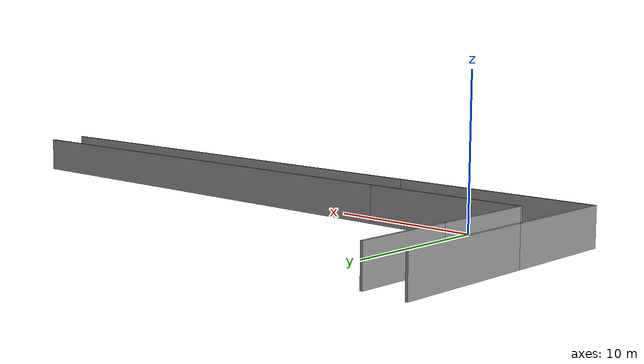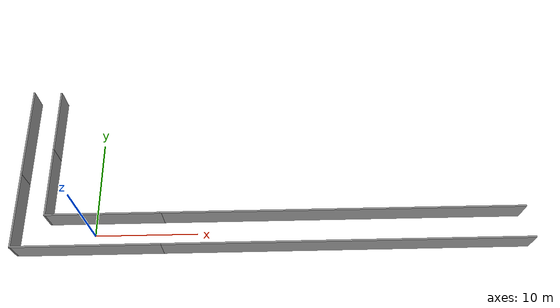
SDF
<?xml version='1.0'?>
<sdf version='1.7'>
  <model name='world2'>
    <pose>17.385 6.66538 0 0 -0 0</pose>
    <link name='Wall_12'>
      <collision name='Wall_12_Collision'>
        <geometry>
          <box>
            <size>7.75 0.15 2.5</size>
          </box>
        </geometry>
        <pose>0 0 1.25 0 -0 0</pose>
      </collision>
      <visual name='Wall_12_Visual'>
        <pose>0 0 1.25 0 -0 0</pose>
        <geometry>
          <box>
            <size>7.75 0.15 2.5</size>
          </box>
        </geometry>
        <material>
          <script>
            <uri>file://media/materials/scripts/gazebo.material</uri>
            <name>Gazebo/Grey</name>
          </script>
          <ambient>1 1 1 1</ambient>
        </material>
        <meta>
          <layer>0</layer>
        </meta>
      </visual>
      <pose>-24.6986 -4.675 0 0 -0 1.5708</pose>
    </link>
    <link name='Wall_14'>
      <collision name='Wall_14_Collision'>
        <geometry>
          <box>
            <size>11.25 0.15 2.5</size>
          </box>
        </geometry>
        <pose>0 0 1.25 0 -0 0</pose>
      </collision>
      <visual name='Wall_14_Visual'>
        <pose>0 0 1.25 0 -0 0</pose>
        <geometry>
          <box>
            <size>11.25 0.15 2.5</size>
          </box>
        </geometry>
        <material>
          <script>
            <uri>file://media/materials/scripts/gazebo.material</uri>
            <name>Gazebo/Grey</name>
          </script>
          <ambient>1 1 1 1</ambient>
        </material>
        <meta>
          <layer>0</layer>
        </meta>
      </visual>
      <pose>-16.3037 -5.29947 0 0 -0 3.14159</pose>
    </link>
    <link name='Wall_16'>
      <collision name='Wall_16_Collision'>
        <geometry>
          <box>
            <size>7.25 0.15 2.5</size>
          </box>
        </geometry>
        <pose>0 0 1.25 0 -0 0</pose>
      </collision>
      <visual name='Wall_16_Visual'>
        <pose>0 0 1.25 0 -0 0</pose>
        <geometry>
          <box>
            <size>7.25 0.15 2.5</size>
          </box>
        </geometry>
        <material>
          <script>
            <uri>file://media/materials/scripts/gazebo.material</uri>
            <name>Gazebo/Grey</name>
          </script>
          <ambient>1 1 1 1</ambient>
        </material>
        <meta>
          <layer>0</layer>
        </meta>
      </visual>
      <pose>-21.8537 -1.74947 0 0 -0 1.5708</pose>
    </link>
    <link name='Wall_18'>
      <collision name='Wall_18_Collision'>
        <geometry>
          <box>
            <size>9.5 0.15 2.5</size>
          </box>
        </geometry>
        <pose>0 0 1.25 0 -0 0</pose>
      </collision>
      <visual name='Wall_18_Visual'>
        <pose>0 0 1.25 0 -0 0</pose>
        <geometry>
          <box>
            <size>9.5 0.15 2.5</size>
          </box>
        </geometry>
        <material>
          <script>
            <uri>file://media/materials/scripts/gazebo.material</uri>
            <name>Gazebo/Grey</name>
          </script>
          <ambient>1 1 1 1</ambient>
        </material>
        <meta>
          <layer>0</layer>
        </meta>
      </visual>
      <pose>-24.6986 3.8 0 0 -0 1.5708</pose>
    </link>
    <link name='Wall_20'>
      <collision name='Wall_20_Collision'>
        <geometry>
          <box>
            <size>6.75 0.15 2.5</size>
          </box>
        </geometry>
        <pose>0 0 1.25 0 -0 0</pose>
      </collision>
      <visual name='Wall_20_Visual'>
        <pose>0 0 1.25 0 -0 0</pose>
        <geometry>
          <box>
            <size>6.75 0.15 2.5</size>
          </box>
        </geometry>
        <material>
          <script>
            <uri>file://media/materials/scripts/gazebo.material</uri>
            <name>Gazebo/Grey</name>
          </script>
          <ambient>1 1 1 1</ambient>
        </material>
        <meta>
          <layer>0</layer>
        </meta>
      </visual>
      <pose>-21.8537 5.10053 0 0 -0 1.5708</pose>
    </link>
    <link name='Wall_24'>
      <collision name='Wall_24_Collision'>
        <geometry>
          <box>
            <size>35.5 0.15 2.5</size>
          </box>
        </geometry>
        <pose>0 0 1.25 0 -0 0</pose>
      </collision>
      <visual name='Wall_24_Visual'>
        <pose>0 0 1.25 0 -0 0</pose>
        <geometry>
          <box>
            <size>35.5 0.15 2.5</size>
          </box>
        </geometry>
        <material>
          <script>
            <uri>file://media/materials/scripts/gazebo.material</uri>
            <name>Gazebo/Grey</name>
          </script>
          <ambient>1 1 1 1</ambient>
        </material>
        <meta>
          <layer>0</layer>
        </meta>
      </visual>
      <pose>7.02355 -8.475 0 0 -0 0</pose>
    </link>
    <link name='Wall_27'>
      <collision name='Wall_27_Collision'>
        <geometry>
          <box>
            <size>35.25 0.15 2.5</size>
          </box>
        </geometry>
        <pose>0 0 1.25 0 -0 0</pose>
      </collision>
      <visual name='Wall_27_Visual'>
        <pose>0 0 1.25 0 -0 0</pose>
        <geometry>
          <box>
            <size>35.25 0.15 2.5</size>
          </box>
        </geometry>
        <material>
          <script>
            <uri>file://media/materials/scripts/gazebo.material</uri>
            <name>Gazebo/Grey</name>
          </script>
          <ambient>1 1 1 1</ambient>
        </material>
        <meta>
          <layer>0</layer>
        </meta>
      </visual>
      <pose>6.79625 -5.29947 0 0 -0 0</pose>
    </link>
    <link name='Wall_9'>
      <collision name='Wall_9_Collision'>
        <geometry>
          <box>
            <size>14.1971 0.15 2.5</size>
          </box>
        </geometry>
        <pose>0 0 1.25 0 -0 0</pose>
      </collision>
      <visual name='Wall_9_Visual'>
        <pose>0 0 1.25 0 -0 0</pose>
        <geometry>
          <box>
            <size>14.1971 0.15 2.5</size>
          </box>
        </geometry>
        <material>
          <script>
            <uri>file://media/materials/scripts/gazebo.material</uri>
            <name>Gazebo/Grey</name>
          </script>
          <ambient>1 1 1 1</ambient>
        </material>
        <meta>
          <layer>0</layer>
        </meta>
      </visual>
      <pose>-17.675 -8.475 0 0 -0 3.14159</pose>
    </link>
    <static>1</static>
  </model>
</sdf>
